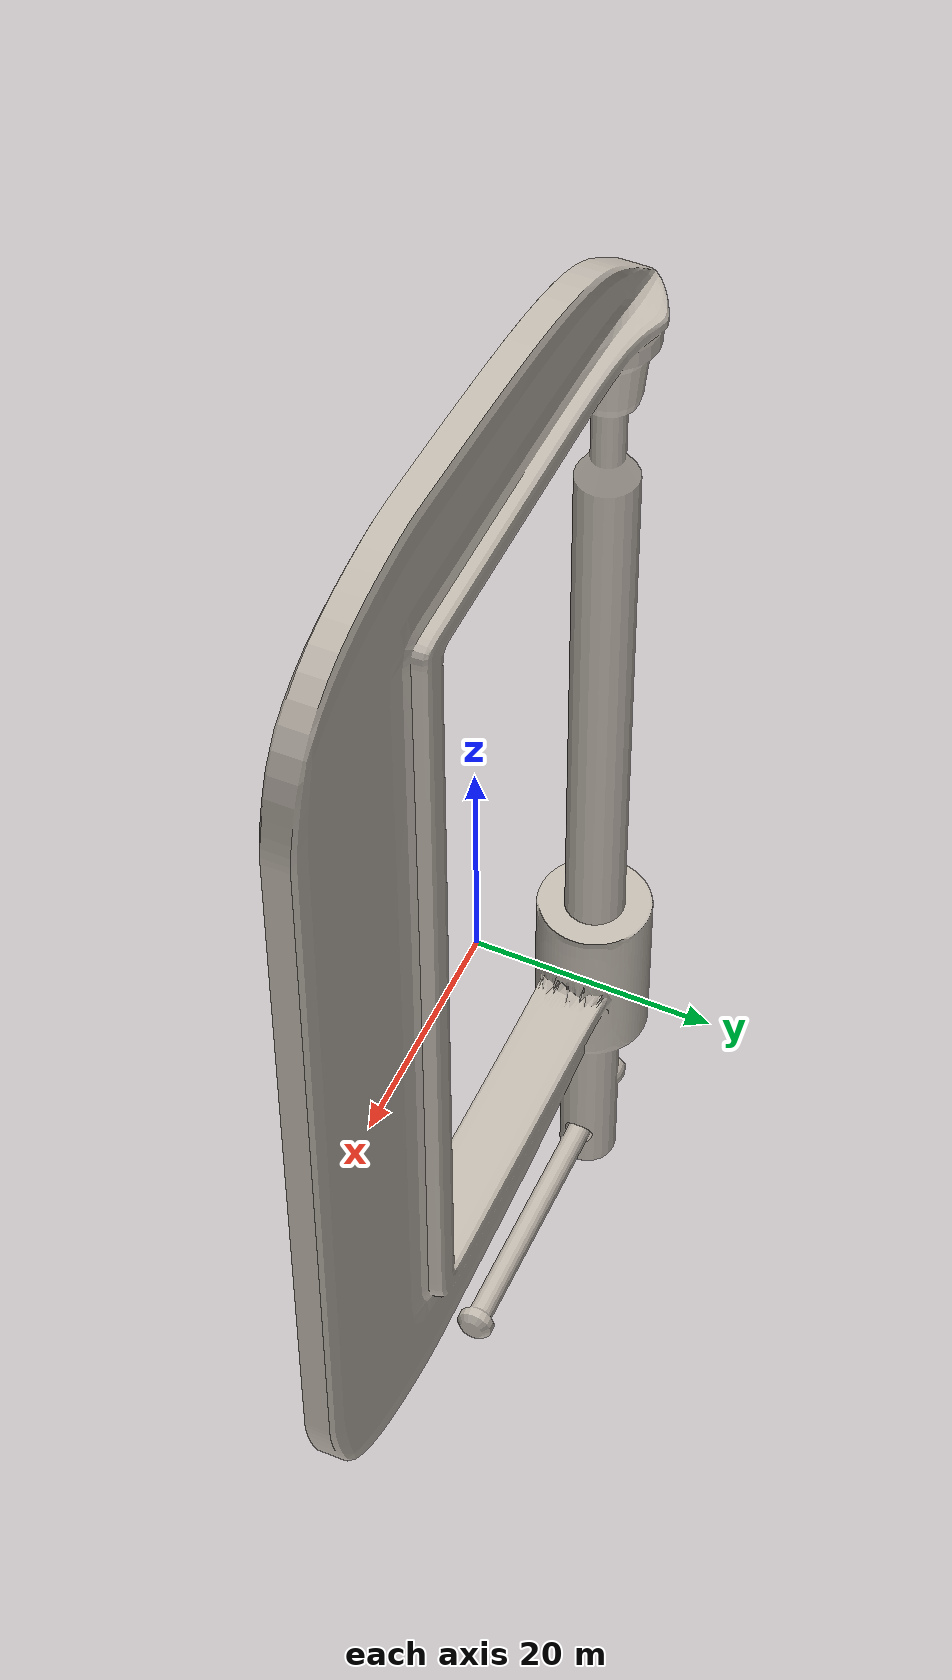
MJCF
<mujoco model="Clamp">
  <default>
    <default class="visual">
      <geom group="2" type="mesh" contype="0" conaffinity="0"/>
    </default>
    <default class="collision">
      <geom group="3" type="mesh"/>
    </default>
  </default>
  <asset>
    <texture type="2d" name="Clamp_BaseColor" file="Clamp_BaseColor.png"/>
    <material name="material_0" texture="Clamp_BaseColor" specular="1.0" shininess="0.5"/>
    <mesh file="Clamp.obj"/>
    <mesh file="Clamp_collision_0.obj"/>
    <mesh file="Clamp_collision_1.obj"/>
    <mesh file="Clamp_collision_2.obj"/>
    <mesh file="Clamp_collision_3.obj"/>
    <mesh file="Clamp_collision_4.obj"/>
    <mesh file="Clamp_collision_5.obj"/>
    <mesh file="Clamp_collision_6.obj"/>
    <mesh file="Clamp_collision_7.obj"/>
    <mesh file="Clamp_collision_8.obj"/>
  </asset>
  <worldbody>
    <body name="Clamp">
      <geom material="material_0" mesh="Clamp" class="visual"/>
      <geom mesh="Clamp_collision_0" rgba="0.04650216796739293 0.5084773727303376 0.9137737072154687 1" class="collision"/>
      <geom mesh="Clamp_collision_1" rgba="0.43619387761094996 0.5574894284288472 0.23651374680890258 1" class="collision"/>
      <geom mesh="Clamp_collision_2" rgba="0.5005828417552147 0.3663422726017672 0.15504161654196513 1" class="collision"/>
      <geom mesh="Clamp_collision_3" rgba="0.0028729479038536176 0.8900581427889056 0.3260497484872352 1" class="collision"/>
      <geom mesh="Clamp_collision_4" rgba="0.098183060797152 0.6300182922547544 0.10958948927394596 1" class="collision"/>
      <geom mesh="Clamp_collision_5" rgba="0.35158425545710004 0.11733175644320193 0.766762347730204 1" class="collision"/>
      <geom mesh="Clamp_collision_6" rgba="0.9655173732597679 0.3217991886027344 0.7434615387659693 1" class="collision"/>
      <geom mesh="Clamp_collision_7" rgba="0.06722531299041024 0.45373808344485644 0.25113746253380076 1" class="collision"/>
      <geom mesh="Clamp_collision_8" rgba="0.6832600494255694 0.5619767019790552 0.6076539439538282 1" class="collision"/>
    </body>
  </worldbody>
</mujoco>
